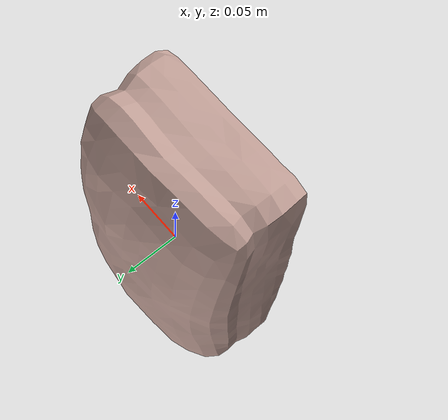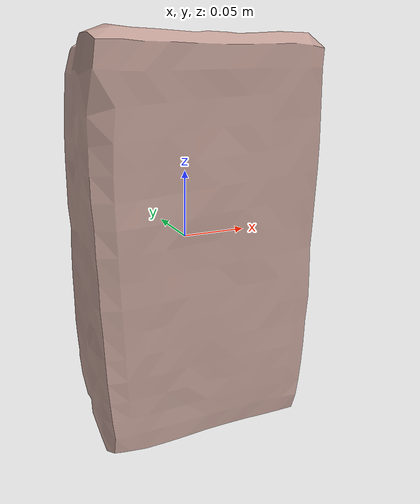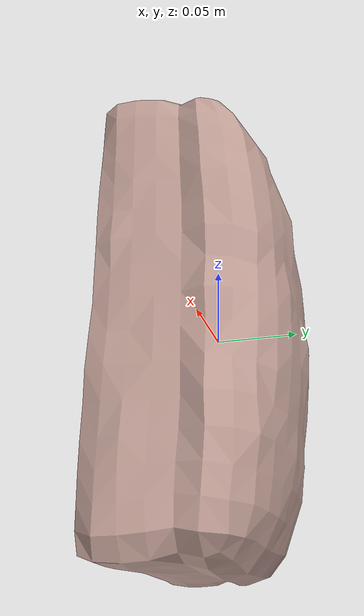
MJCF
<mujoco model="Bread_17">
  <compiler autolimits="true" boundmass="0.01" angle="radian"/>
  <default>
    <default class="/">
      <default class="__VISUAL_MJT__">
        <geom contype="0" conaffinity="0" group="0"/>
      </default>
      <default class="__STRUCTURAL_MJT__">
        <geom contype="8" conaffinity="15" group="4" friction="0.90000000000000002 0.90000000000000002 0.001" solref="0.025000000000000001 1" solimp="0.998 0.998 0.001"/>
      </default>
      <default class="__DYNAMIC_MJT__">
        <geom contype="1" conaffinity="15" group="4" friction="0.90000000000000002 0.90000000000000002 0.001" solref="0.025000000000000001 1" solimp="0.998 0.998 0.001"/>
      </default>
    </default>
  </default>
  <asset>
    <texture name="BumpyBread_Mat2" type="2d" file="BumpyBread_AlbedoTransparency.png"/>
    <material name="material_BumpyBread_Mat2" class="/" texture="BumpyBread_Mat2" specular="0.5" shininess="0.5" rgba="1 0.86029409999999995 0.86029409999999995 1"/>
    <mesh name="Bread_17_bumpybread_b_mesh" class="/" file="Bread_17_bumpybread_b_mesh/Bread_17_bumpybread_b_mesh.obj" scale="1 1 1"/>
  </asset>
  <worldbody>
    <body name="Bread_17">
      <joint name="Bread_17_free" class="/" type="free" pos="0 0 0" axis="0 0 1" stiffness="0" range="0 0" armature="0" damping="0.10000000000000001" frictionloss="0"/>
      <body name="Bread_17_bumpybread_b_mesh" pos="-0 0.0026099999999999999 0" quat="1 0 0 0">
        <geom name="Bread_17_bumpybread_b_mesh" class="__VISUAL_MJT__" type="mesh" material="material_BumpyBread_Mat2" shellinertia="false" mesh="Bread_17_bumpybread_b_mesh"/>
        <geom name="Bread_17_PrimitiveCollider_0" class="__DYNAMIC_MJT__" type="box" size="0.086307168006896973 0.059125900268554688 0.14771589636802673" rgba="0 1 0 1" pos="-0 -0.0026111602783203125 0" quat="1 0 0 0"/>
      </body>
    </body>
  </worldbody>
</mujoco>
